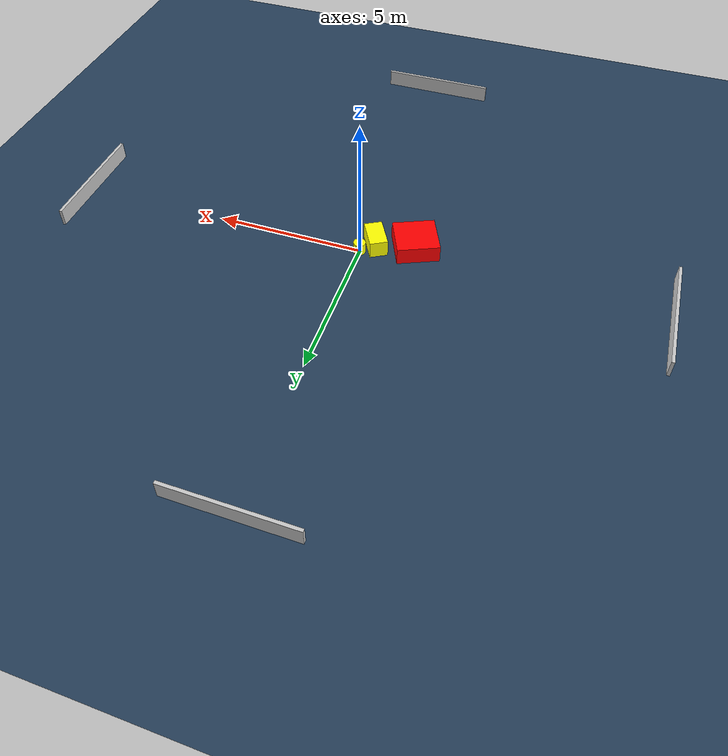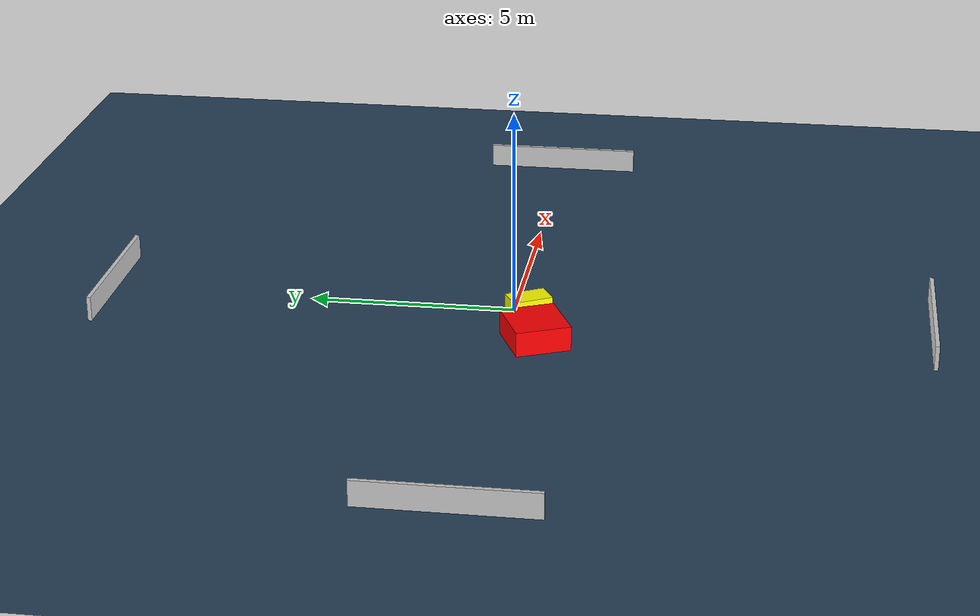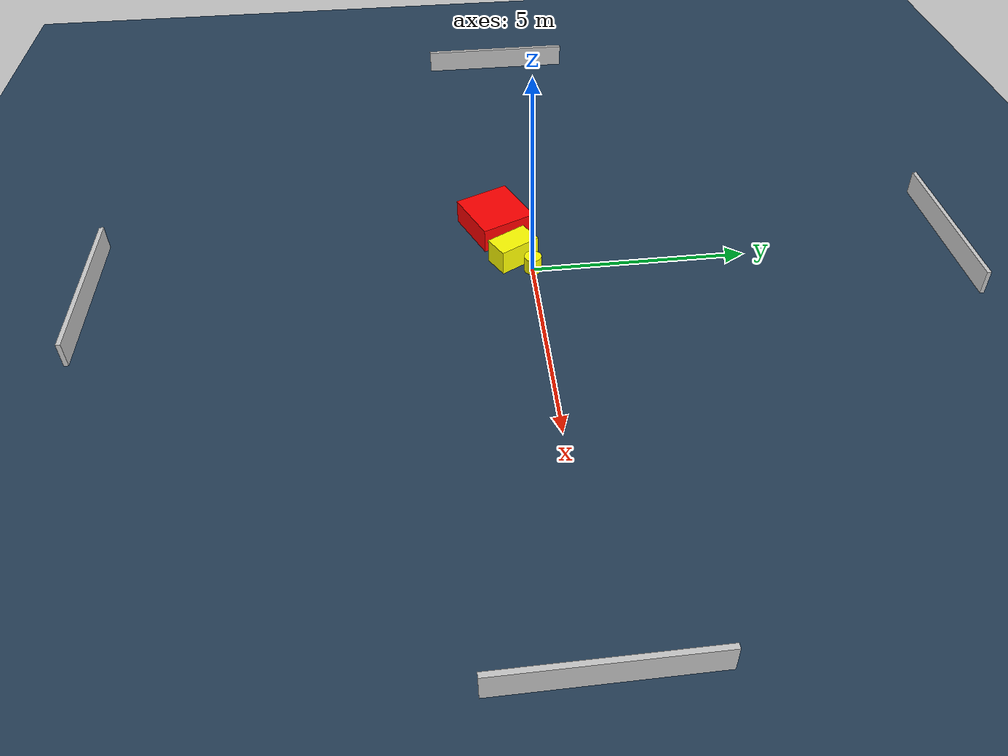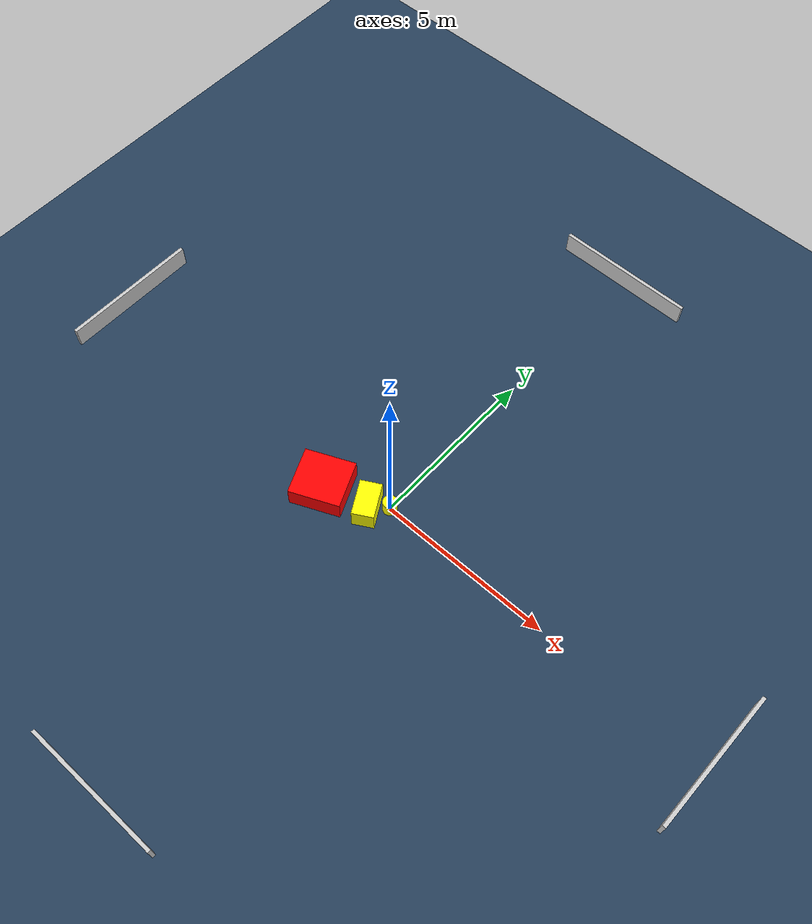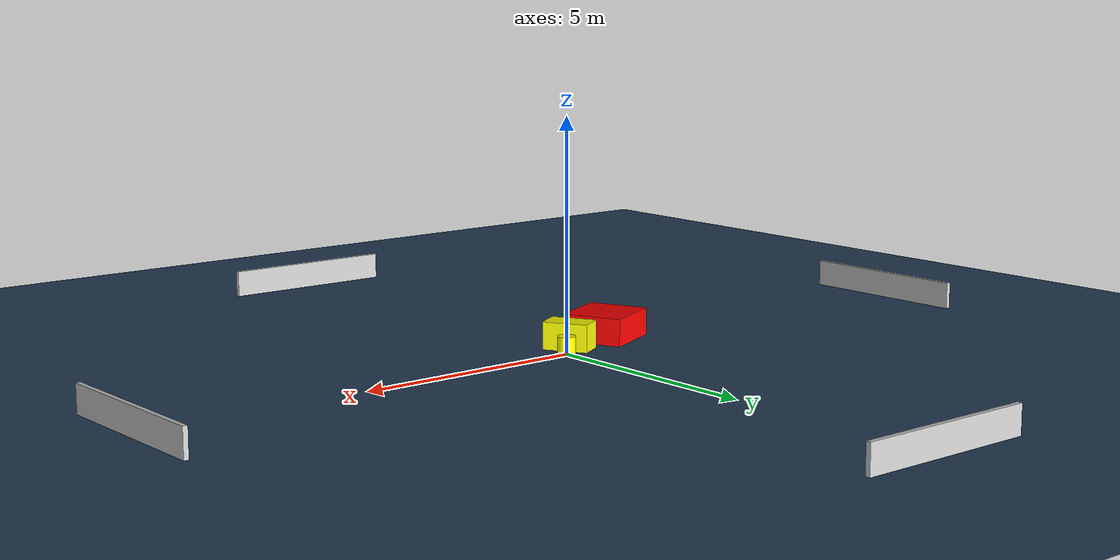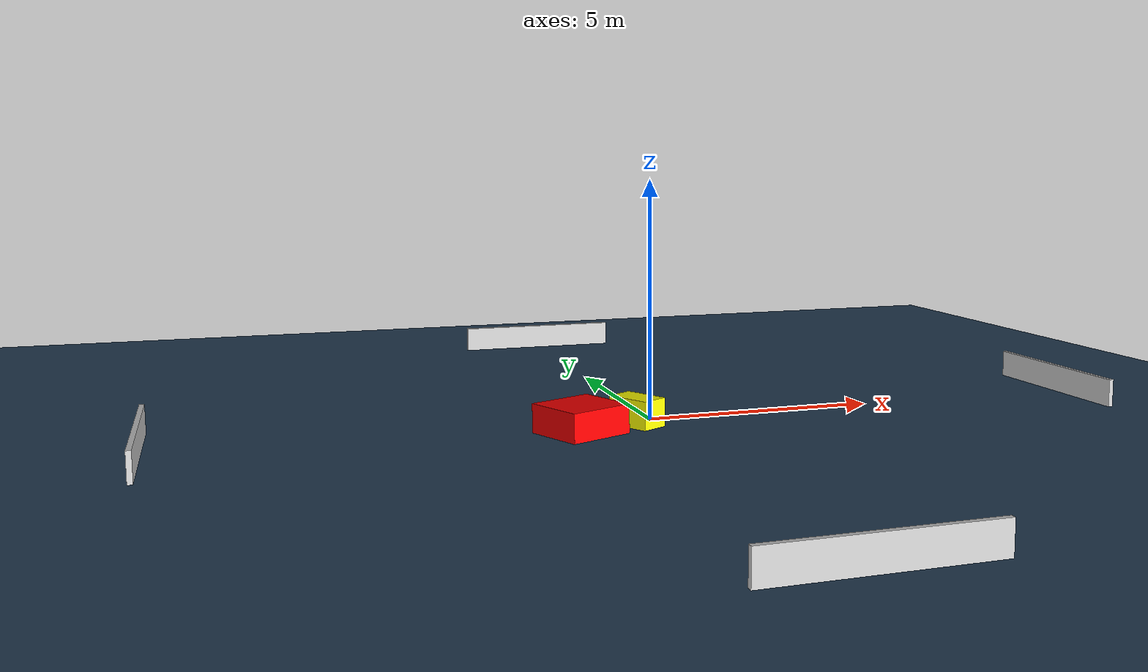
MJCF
<?xml version="1.0" ?>
<mujoco model="generated_environment">
  <option timestep="0.01" integrator="RK4" cone="elliptic"/>
  <default>
    <geom density="1"/>
  </default>
  <asset>
    <texture builtin="gradient" height="3072" name="skybox" rgb1="0.3 0.5 0.7" rgb2="0 0 0" type="skybox" width="512"/>
    <texture builtin="checker" height="300" name="groundplane" rgb1="0.2 0.3 0.4" rgb2="0.1 0.2 0.3" type="2d" width="300"/>
    <material name="groundplane" reflectance="0.2" texrepeat="5 5" texture="groundplane"/>
  </asset>
  <worldbody>
    <light dir="0 0 -1" directional="true" pos="0 0 1.5"/>
    <geom condim="3" friction="0.5 0.005 0.001" material="groundplane" name="floor" pos="0 0 0" size="0 0 0.05" type="plane"/>
    <body name="walls">
      <geom name="wall_1" condim="4" pos="-10.0 0.0 0.3" rgba="0.800000011920929 0.800000011920929 0.800000011920929 1.0" size="0.05 2.0 0.3" type="box"/>
      <geom name="wall_2" condim="4" pos="10.0 0.0 0.3" rgba="0.800000011920929 0.800000011920929 0.800000011920929 1.0" size="0.05 2.0 0.3" type="box"/>
      <geom name="wall_3" condim="4" pos="0.0 -10.0 0.3" rgba="0.800000011920929 0.800000011920929 0.800000011920929 1.0" size="2.0 0.05 0.3" type="box"/>
      <geom name="wall_4" condim="4" pos="0.0 10.0 0.3" rgba="0.800000011920929 0.800000011920929 0.800000011920929 1.0" size="2.0 0.05 0.3" type="box"/>
    </body>
    <body name="robot">
      <joint name="joint_x" type="slide" pos="0 0 0" axis="1 0 0"/>
      <joint name="joint_y" type="slide" pos="0 0 0" axis="0 1 0"/>
      <geom name="robot" type="cylinder" pos="0.0 0.0 0.2" size="0.2 0.2 0.0" mass="5.0" friction="1.0 0.005 0.0001" condim="4" rgba="1.0 1.0 0.0 1.0"/>
    </body>
    <body name="obstacle_1_movable">
      <geom name="obstacle_1_movable" condim="4" pos="-0.42799328845273 -0.4094605973557578 0.3" euler="0 0 209.44844477947038" friction="0.0 0.005 0.001" rgba="1.0 1.0 0.0 1.0" size="0.30008878167063924 0.49833730360119227 0.3" type="box" mass="0.1"/>
      <joint type="free"/>
    </body>
    <body name="obstacle_2_static">
      <geom name="obstacle_2_static" condim="4" pos="-1.7069911909774391 -0.7268529305918996 0.3" euler="0 0 113.9878623800605" friction="0.0 0.005 0.001" rgba="1.0 0.0 0.0 1.0" size="0.6672926729441009 0.7070759129140898 0.3" type="box"/>
    </body>
  </worldbody>
  <actuator>
    <motor name="actuator_x" joint="joint_x" gear="1" ctrlrange="-1 1"/>
    <motor name="actuator_y" joint="joint_y" gear="1" ctrlrange="-1 1"/>
  </actuator>
</mujoco>
